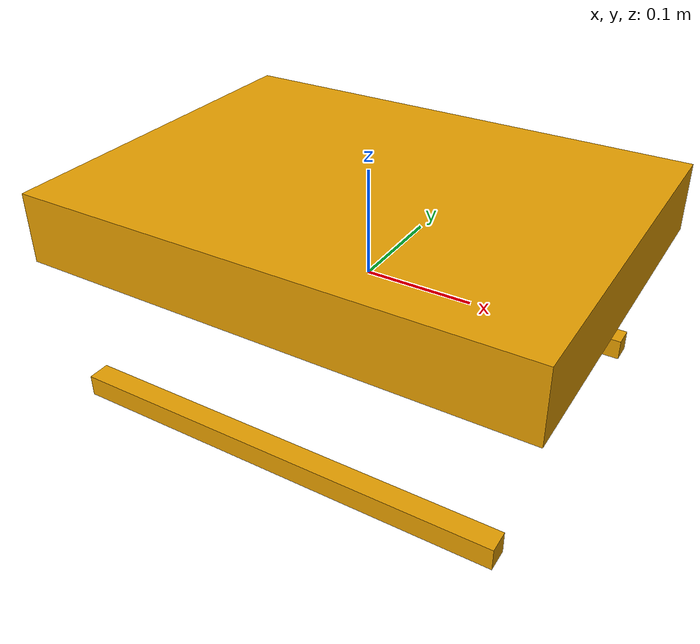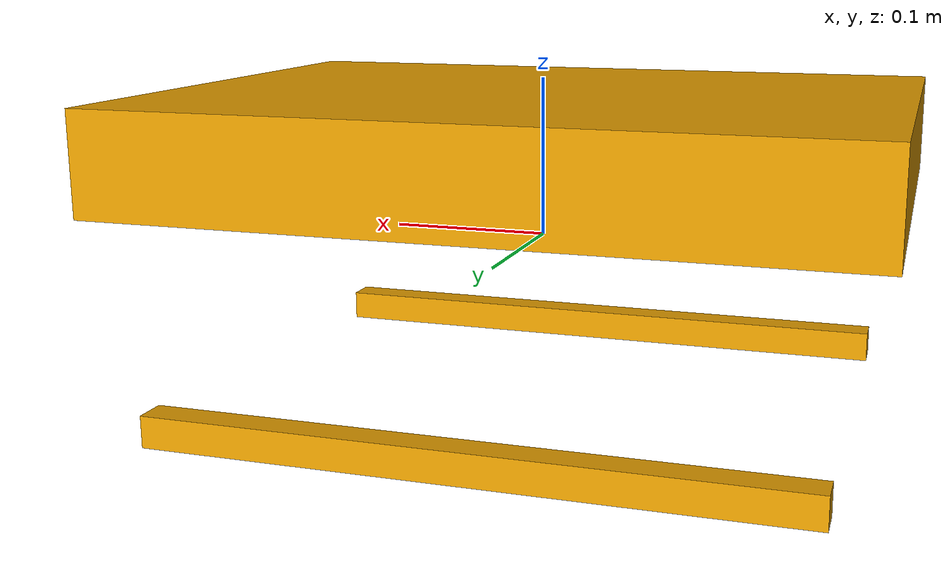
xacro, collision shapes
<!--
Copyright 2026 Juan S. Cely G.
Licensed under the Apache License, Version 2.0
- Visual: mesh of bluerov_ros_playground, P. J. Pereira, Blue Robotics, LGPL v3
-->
<?xml version="1.0"?>
<robot xmlns:xacro="http://www.ros.org/wiki/xacro" name="bluerov2">

  <xacro:include filename="common.xacro"/>

  <xacro:arg name="name" default="bluerov2"/>
  <xacro:arg name="cameras" default="true"/>
  <xacro:property name="name" value="$(arg name)"/>

  <!-- Rigid body -->
  <xacro:property name="body_mass" value="10.0"/>
  <xacro:property name="thruster_mass" value="0.002"/>
  <xacro:property name="com_z" value="0.011"/>

  <!-- Buoyancy: water density, gravity and net buoyancy (B - W) -->
  <xacro:property name="water_density" value="1000.0"/>
  <xacro:property name="gravity" value="9.8"/>
  <xacro:property name="net_buoyancy" value="2.0"/>
  <xacro:property name="total_mass" value="${body_mass + 6 * thruster_mass}"/>
  <xacro:property name="volume"
                  value="${(total_mass * gravity + net_buoyancy) / (water_density * gravity)}"/>
  <!-- Skids: 2 x (0.40 x 0.02 x 0.02) m -->
  <xacro:property name="skid_volume" value="${2 * 0.40 * 0.02 * 0.02}"/>
  <xacro:property name="box_x" value="0.457"/>
  <xacro:property name="box_y" value="0.338"/>
  <xacro:property name="box_z" value="${(volume - skid_volume) / (box_x * box_y)}"/>
  <xacro:property name="box_center_z" value="0.06"/>

  <!-- T200 thruster -->
  <xacro:property name="thruster" value="${dict(
    thrust_coefficient=0.02, fluid_density=water_density, propeller_diameter=0.1,
    max_thrust=40.0)}"/>

  <!-- Hydrodynamics (Wu 2018) -->
  <xacro:property name="hydro" value="${dict(water_density=water_density,
    xDotU=-5.5, yDotV=-12.7, zDotW=-14.57, kDotP=-0.12, mDotQ=-0.12, nDotR=-0.12,
    xU=-4.03, yV=-6.22, zW=-5.18, kP=-0.07, mQ=-0.07, nR=-0.07,
    xUabsU=-18.18, yVabsV=-21.66, zWabsW=-36.99, kPabsP=-1.55, mQabsQ=-1.55, nRabsR=-1.55)}"/>

  <!-- ============================== Frame ============================== -->

  <!-- base_link has no inertia (KDL does not support it in the root link); the mass is in
       base_inertia, which Gazebo merges into base_link. Its collisions are the volume that
       displaces water -->
  <link name="base_link">
    <!-- Mesh in the base_link frame (meshes/bluerov2/README.md). The thrusters have no
         visual of their own: their propellers are in the mesh -->
    <visual>
      <origin xyz="0 0 0" rpy="0 0 0"/>
      <geometry>
        <mesh filename="file://$(find pilotaro_description)/meshes/bluerov2/bluerov2.glb"/>
      </geometry>
    </visual>

    <collision name="buoyancy">
      <origin xyz="0 0 ${box_center_z}" rpy="0 0 0"/>
      <geometry>
        <box size="${box_x} ${box_y} ${box_z}"/>
      </geometry>
    </collision>
    <collision name="skid_left">
      <origin xyz="0 0.15 -0.10" rpy="0 0 0"/>
      <geometry>
        <box size="0.40 0.02 0.02"/>
      </geometry>
    </collision>
    <collision name="skid_right">
      <origin xyz="0 -0.15 -0.10" rpy="0 0 0"/>
      <geometry>
        <box size="0.40 0.02 0.02"/>
      </geometry>
    </collision>
  </link>

  <link name="base_inertia">
    <inertial>
      <origin xyz="0 0 ${com_z}" rpy="0 0 0"/>
      <mass value="${body_mass}"/>
      <inertia ixx="0.099" ixy="0" ixz="0" iyy="0.178" iyz="0" izz="0.269"/>
    </inertial>
  </link>
  <joint name="base_inertia_joint" type="fixed">
    <parent link="base_link"/>
    <child link="base_inertia"/>
    <origin xyz="0 0 0" rpy="0 0 0"/>
  </joint>

  <xacro:pilotaro_hydrodynamics link="base_link" hydro="${hydro}"/>

  <!-- ============================== Thrusters ============================== -->

  <xacro:macro name="t200" params="index x y z roll pitch yaw direction">
    <xacro:pilotaro_thruster robot="${name}" index="${index}" x="${x}" y="${y}" z="${z}"
                             roll="${roll}" pitch="${pitch}" yaw="${yaw}"
                             direction="${direction}" thruster="${thruster}">
      <visuals/>
    </xacro:pilotaro_thruster>
  </xacro:macro>

  <xacro:t200 index="0" x="0.14" y="-0.092" z="0.0" roll="0" pitch="${pi / 2}"
              yaw="${-3 * pi / 4}" direction="1"/>
  <xacro:t200 index="1" x="0.14" y="0.092" z="0.0" roll="0" pitch="${pi / 2}"
              yaw="${3 * pi / 4}" direction="1"/>
  <xacro:t200 index="2" x="-0.14" y="-0.092" z="0.0" roll="0" pitch="${pi / 2}"
              yaw="${-pi / 4}" direction="-1"/>
  <xacro:t200 index="3" x="-0.14" y="0.092" z="0.0" roll="0" pitch="${pi / 2}"
              yaw="${pi / 4}" direction="-1"/>
  <xacro:t200 index="4" x="0.0" y="-0.109" z="0.077" roll="${pi}" pitch="0" yaw="0"
              direction="1"/>
  <xacro:t200 index="5" x="0.0" y="0.109" z="0.077" roll="${pi}" pitch="0" yaw="0"
              direction="1"/>

  <!-- ============================== Sensors ============================== -->

  <xacro:pilotaro_imu robot="${name}" rate="250"/>
  <xacro:pilotaro_magnetometer robot="${name}" rate="50"/>

  <!-- Blue Robotics Ping echosounder looking down: distance to the bottom, 0.3 to 30 m -->
  <xacro:pilotaro_rangefinder robot="${name}" prefix="sonar" x="0.10" y="0.0" z="-0.10"
                              range_min="0.3" range_max="30.0" rate="10"/>

  <xacro:if value="$(arg cameras)">
    <!-- Low-light HD camera inside the front of the electronics enclosure -->
    <xacro:pilotaro_camera robot="${name}" prefix="camera_front" x="0.18" y="0" z="0.04"
                           roll="0" pitch="0" width="1280" height="720" hfov="1.39"
                           rate="30"/>
  </xacro:if>

  <xacro:pilotaro_odometry robot="${name}" rate="250"/>

</robot>

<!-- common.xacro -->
<robot xmlns:xacro="http://www.ros.org/wiki/xacro">

  <!-- Inertia of a solid box -->
  <xacro:macro name="pilotaro_box_inertia" params="mass x y z">
    <inertial>
      <mass value="${mass}"/>
      <inertia ixx="${mass * (y * y + z * z) / 12.0}" ixy="0" ixz="0"
               iyy="${mass * (x * x + z * z) / 12.0}" iyz="0"
               izz="${mass * (x * x + y * y) / 12.0}"/>
    </inertial>
  </xacro:macro>

  <!-- ============================== Rotor ============================== -->

  <xacro:macro name="pilotaro_rotor"
               params="robot index x y z direction mass ixx iyy izz length width motor **visuals">
    <link name="rotor_${index}">
      <inertial>
        <origin xyz="0 0 0" rpy="0 0 0"/>
        <mass value="${mass}"/>
        <inertia ixx="${ixx}" ixy="0" ixz="0" iyy="${iyy}" iyz="0" izz="${izz}"/>
      </inertial>
      <xacro:insert_block name="visuals"/>
      <collision>
        <origin xyz="0 0 0" rpy="0 0 0"/>
        <geometry>
          <box size="${length} ${width} 0.0008461538461538462"/>
        </geometry>
      </collision>
    </link>
    <joint name="rotor_${index}_joint" type="continuous">
      <parent link="base_link"/>
      <child link="rotor_${index}"/>
      <origin xyz="${x} ${y} ${z}" rpy="0 0 0"/>
      <axis xyz="0 0 1"/>
    </joint>
    <gazebo>
      <plugin filename="gz-sim-multicopter-motor-model-system"
              name="gz::sim::systems::MulticopterMotorModel">
        <robotNamespace>${robot}</robotNamespace>
        <jointName>rotor_${index}_joint</jointName>
        <linkName>rotor_${index}</linkName>
        <turningDirection>${direction}</turningDirection>
        <timeConstantUp>${motor['time_constant_up']}</timeConstantUp>
        <timeConstantDown>${motor['time_constant_down']}</timeConstantDown>
        <maxRotVelocity>${motor['max_rot_velocity']}</maxRotVelocity>
        <motorConstant>${motor['motor_constant']}</motorConstant>
        <momentConstant>${motor['moment_constant']}</momentConstant>
        <commandSubTopic>command/motor_speed</commandSubTopic>
        <actuator_number>${index}</actuator_number>
        <rotorDragCoefficient>${motor['rotor_drag_coefficient']}</rotorDragCoefficient>
        <rollingMomentCoefficient>${motor['rolling_moment_coefficient']}</rollingMomentCoefficient>
        <motorSpeedPubTopic>motor_speed/${index}</motorSpeedPubTopic>
        <rotorVelocitySlowdownSim>10</rotorVelocitySlowdownSim>
        <motorType>velocity</motorType>
      </plugin>
    </gazebo>
  </xacro:macro>

  <!-- ============================== Thruster ============================== -->

  <xacro:macro name="pilotaro_thruster"
               params="robot index x y z roll pitch yaw direction thruster **visuals">
    <link name="thruster_${index}">
      <inertial>
        <origin xyz="0 0 0" rpy="0 0 0"/>
        <mass value="0.002"/>
        <inertia ixx="0.001" ixy="0" ixz="0" iyy="0.001" iyz="0" izz="0.001"/>
      </inertial>
      <xacro:insert_block name="visuals"/>
    </link>
    <joint name="thruster_${index}_joint" type="continuous">
      <parent link="base_link"/>
      <child link="thruster_${index}"/>
      <origin xyz="${x} ${y} ${z}" rpy="${roll} ${pitch} ${yaw}"/>
      <axis xyz="0 0 1"/>
    </joint>
    <gazebo>
      <plugin filename="gz-sim-thruster-system" name="gz::sim::systems::Thruster">
        <namespace>${robot}</namespace>
        <joint_name>thruster_${index}_joint</joint_name>
        <topic>thruster_${index}/cmd_thrust</topic>
        <thrust_coefficient>${direction * thruster['thrust_coefficient']}</thrust_coefficient>
        <fluid_density>${thruster['fluid_density']}</fluid_density>
        <propeller_diameter>${thruster['propeller_diameter']}</propeller_diameter>
        <velocity_control>true</velocity_control>
        <max_thrust_cmd>${thruster['max_thrust']}</max_thrust_cmd>
        <min_thrust_cmd>${-thruster['max_thrust']}</min_thrust_cmd>
      </plugin>
    </gazebo>
  </xacro:macro>

  <!-- ============================== Hydrodynamics ============================== -->

  <xacro:macro name="pilotaro_hydrodynamics" params="link hydro">
    <gazebo>
      <plugin filename="gz-sim-hydrodynamics-system" name="gz::sim::systems::Hydrodynamics">
        <link_name>${link}</link_name>
        <water_density>${hydro['water_density']}</water_density>
        <disable_added_mass>true</disable_added_mass>
        <xDotU>${hydro['xDotU']}</xDotU>
        <yDotV>${hydro['yDotV']}</yDotV>
        <zDotW>${hydro['zDotW']}</zDotW>
        <kDotP>${hydro['kDotP']}</kDotP>
        <mDotQ>${hydro['mDotQ']}</mDotQ>
        <nDotR>${hydro['nDotR']}</nDotR>
        <xU>${hydro['xU']}</xU>
        <yV>${hydro['yV']}</yV>
        <zW>${hydro['zW']}</zW>
        <kP>${hydro['kP']}</kP>
        <mQ>${hydro['mQ']}</mQ>
        <nR>${hydro['nR']}</nR>
        <xUabsU>${hydro['xUabsU']}</xUabsU>
        <yVabsV>${hydro['yVabsV']}</yVabsV>
        <zWabsW>${hydro['zWabsW']}</zWabsW>
        <kPabsP>${hydro['kPabsP']}</kPabsP>
        <mQabsQ>${hydro['mQabsQ']}</mQabsQ>
        <nRabsR>${hydro['nRabsR']}</nRabsR>
      </plugin>
    </gazebo>
  </xacro:macro>

  <!-- ============================== IMU ============================== -->

  <xacro:macro name="pilotaro_imu_noise"
               params="stddev bias_mean bias_stddev dynamic_bias_stddev correlation_time precision">
    <noise type="gaussian">
      <mean>0</mean>
      <stddev>${stddev}</stddev>
      <bias_mean>${bias_mean}</bias_mean>
      <bias_stddev>${bias_stddev}</bias_stddev>
      <dynamic_bias_stddev>${dynamic_bias_stddev}</dynamic_bias_stddev>
      <dynamic_bias_correlation_time>${correlation_time}</dynamic_bias_correlation_time>
      <precision>${precision}</precision>
    </noise>
  </xacro:macro>
  <xacro:macro name="pilotaro_gyro_noise">
    <xacro:pilotaro_imu_noise stddev="0.009" bias_mean="0.00075" bias_stddev="0.005"
                              dynamic_bias_stddev="0.00002" correlation_time="400.0"
                              precision="0.00025"/>
  </xacro:macro>
  <xacro:macro name="pilotaro_accel_noise">
    <xacro:pilotaro_imu_noise stddev="0.021" bias_mean="0.05" bias_stddev="0.0075"
                              dynamic_bias_stddev="0.000375" correlation_time="175.0"
                              precision="0.005"/>
  </xacro:macro>

  <xacro:macro name="pilotaro_imu" params="robot rate:=250">
    <link name="imu_link"/>
    <joint name="imu_joint" type="fixed">
      <parent link="base_link"/>
      <child link="imu_link"/>
      <origin xyz="0 0 0" rpy="0 0 0"/>
    </joint>
    <gazebo reference="base_link">
      <sensor name="imu" type="imu">
        <always_on>1</always_on>
        <update_rate>${rate}</update_rate>
        <topic>/${robot}/imu</topic>
        <gz_frame_id>${robot}/imu_link</gz_frame_id>
        <imu>
          <enable_orientation>0</enable_orientation>
          <angular_velocity>
            <x><xacro:pilotaro_gyro_noise/></x>
            <y><xacro:pilotaro_gyro_noise/></y>
            <z><xacro:pilotaro_gyro_noise/></z>
          </angular_velocity>
          <linear_acceleration>
            <x><xacro:pilotaro_accel_noise/></x>
            <y><xacro:pilotaro_accel_noise/></y>
            <z><xacro:pilotaro_accel_noise/></z>
          </linear_acceleration>
        </imu>
      </sensor>
    </gazebo>
  </xacro:macro>

  <!-- ============================== Barometer, magnetometer, GPS ============================== -->

  <xacro:macro name="pilotaro_air_pressure" params="robot rate:=50">
    <gazebo reference="base_link">
      <sensor name="air_pressure" type="air_pressure">
        <always_on>1</always_on>
        <update_rate>${rate}</update_rate>
        <topic>/${robot}/air_pressure</topic>
        <gz_frame_id>${robot}/base_link</gz_frame_id>
        <air_pressure>
          <reference_altitude>0</reference_altitude>
          <pressure>
            <noise type="gaussian">
              <mean>0</mean>
              <stddev>0.01</stddev>
            </noise>
          </pressure>
        </air_pressure>
      </sensor>
    </gazebo>
  </xacro:macro>

  <xacro:macro name="pilotaro_magnetometer" params="robot rate:=50">
    <gazebo reference="base_link">
      <sensor name="magnetometer" type="magnetometer">
        <always_on>1</always_on>
        <update_rate>${rate}</update_rate>
        <topic>/${robot}/magnetometer</topic>
        <gz_frame_id>${robot}/base_link</gz_frame_id>
        <magnetometer>
          <x><noise type="gaussian"><mean>0.000000080</mean><bias_mean>0.000000400</bias_mean></noise></x>
          <y><noise type="gaussian"><mean>0.000000080</mean><bias_mean>0.000000400</bias_mean></noise></y>
          <z><noise type="gaussian"><mean>0.000000080</mean><bias_mean>0.000000400</bias_mean></noise></z>
        </magnetometer>
      </sensor>
    </gazebo>
  </xacro:macro>

  <xacro:macro name="pilotaro_navsat" params="robot rate:=10">
    <gazebo reference="base_link">
      <sensor name="navsat" type="navsat">
        <always_on>1</always_on>
        <update_rate>${rate}</update_rate>
        <topic>/${robot}/navsat</topic>
        <gz_frame_id>${robot}/base_link</gz_frame_id>
        <navsat>
          <position_sensing>
            <!-- gz applies the horizontal noise to latitude/longitude in degrees:
                 4.5e-6 deg ~ 0.5 m. The vertical noise is in meters -->
            <horizontal>
              <noise type="gaussian"><mean>0.0</mean><stddev>4.5e-6</stddev></noise>
            </horizontal>
            <vertical>
              <noise type="gaussian"><mean>0.0</mean><stddev>1.0</stddev></noise>
            </vertical>
          </position_sensing>
          <velocity_sensing>
            <horizontal>
              <noise type="gaussian"><mean>0.0</mean><stddev>0.1</stddev></noise>
            </horizontal>
            <vertical>
              <noise type="gaussian"><mean>0.0</mean><stddev>0.1</stddev></noise>
            </vertical>
          </velocity_sensing>
        </navsat>
      </sensor>
    </gazebo>
  </xacro:macro>

  <!-- ============================== Camera ============================== -->

  <xacro:macro name="pilotaro_camera"
               params="robot prefix x y z roll pitch width height hfov rate mass:=0.0 size:=0.0">
    <link name="${prefix}_link">
      <xacro:if value="${mass > 0.0}">
        <xacro:pilotaro_box_inertia mass="${mass}" x="${size}" y="${2.5 * size}" z="${size}"/>
      </xacro:if>
      <xacro:if value="${size > 0.0}">
        <visual>
          <geometry>
            <box size="${size} ${2.5 * size} ${size}"/>
          </geometry>
          <material name="black">
            <color rgba="0.05 0.05 0.05 1"/>
          </material>
        </visual>
      </xacro:if>
    </link>
    <joint name="${prefix}_joint" type="fixed">
      <parent link="base_link"/>
      <child link="${prefix}_link"/>
      <origin xyz="${x} ${y} ${z}" rpy="${roll} ${pitch} 0"/>
    </joint>
    <gazebo reference="base_link">
      <sensor name="${prefix}" type="camera">
        <pose>${x} ${y} ${z} ${roll} ${pitch} 0</pose>
        <always_on>1</always_on>
        <update_rate>${rate}</update_rate>
        <topic>/${robot}/${prefix}/image</topic>
        <gz_frame_id>${robot}/${prefix}_link</gz_frame_id>
        <camera name="${prefix}">
          <camera_info_topic>/${robot}/${prefix}/camera_info</camera_info_topic>
          <horizontal_fov>${hfov}</horizontal_fov>
          <image>
            <width>${width}</width>
            <height>${height}</height>
            <format>R8G8B8</format>
          </image>
          <clip>
            <near>0.05</near>
            <far>300</far>
          </clip>
          <noise>
            <type>gaussian</type>
            <mean>0</mean>
            <stddev>0.007</stddev>
          </noise>
        </camera>
      </sensor>
    </gazebo>
  </xacro:macro>

  <!-- ============================== Rangefinder ============================== -->

  <xacro:macro name="pilotaro_rangefinder" params="robot prefix x y z range_min range_max rate:=30">
    <link name="${prefix}_link"/>
    <joint name="${prefix}_joint" type="fixed">
      <parent link="base_link"/>
      <child link="${prefix}_link"/>
      <origin xyz="${x} ${y} ${z}" rpy="0 ${pi / 2} 0"/>
    </joint>
    <gazebo reference="base_link">
      <sensor name="${prefix}" type="gpu_lidar">
        <pose>${x} ${y} ${z} 0 ${pi / 2} 0</pose>
        <always_on>1</always_on>
        <update_rate>${rate}</update_rate>
        <topic>/${robot}/${prefix}</topic>
        <gz_frame_id>${robot}/${prefix}_link</gz_frame_id>
        <lidar>
          <scan>
            <horizontal>
              <samples>1</samples>
              <resolution>1</resolution>
              <min_angle>0</min_angle>
              <max_angle>0</max_angle>
            </horizontal>
          </scan>
          <range>
            <min>${range_min}</min>
            <max>${range_max}</max>
            <resolution>0.01</resolution>
          </range>
          <noise>
            <type>gaussian</type>
            <mean>0.0</mean>
            <stddev>0.01</stddev>
          </noise>
        </lidar>
      </sensor>
    </gazebo>
  </xacro:macro>

  <!-- ============================== Odometry ============================== -->

  <xacro:macro name="pilotaro_odometry" params="robot rate:=250">
    <gazebo>
      <plugin filename="gz-sim-odometry-publisher-system"
              name="gz::sim::systems::OdometryPublisher">
        <dimensions>3</dimensions>
        <odom_topic>/${robot}/odometry</odom_topic>
        <odom_frame>${robot}/odom</odom_frame>
        <robot_base_frame>${robot}/base_link</robot_base_frame>
        <odom_publish_frequency>${rate}</odom_publish_frequency>
      </plugin>
    </gazebo>
  </xacro:macro>

</robot>
